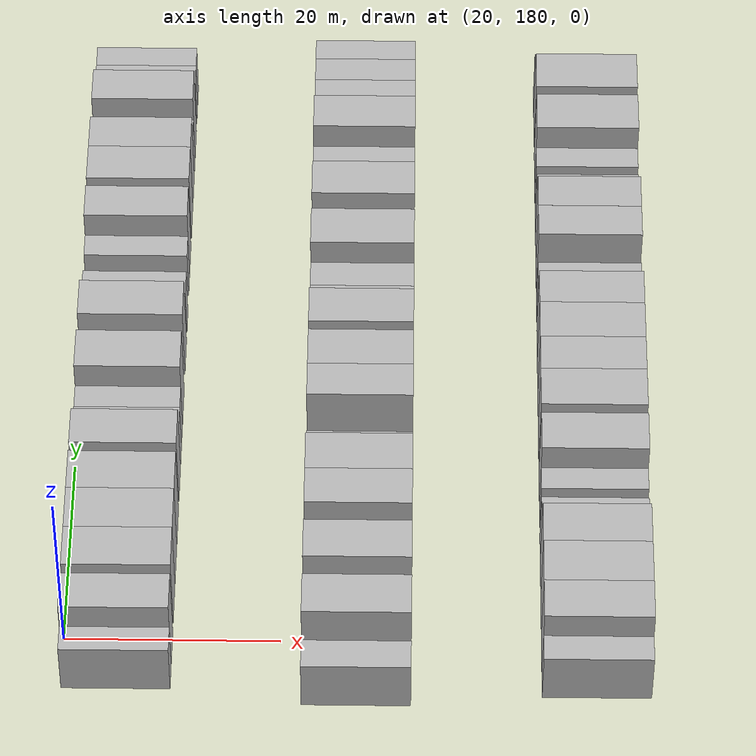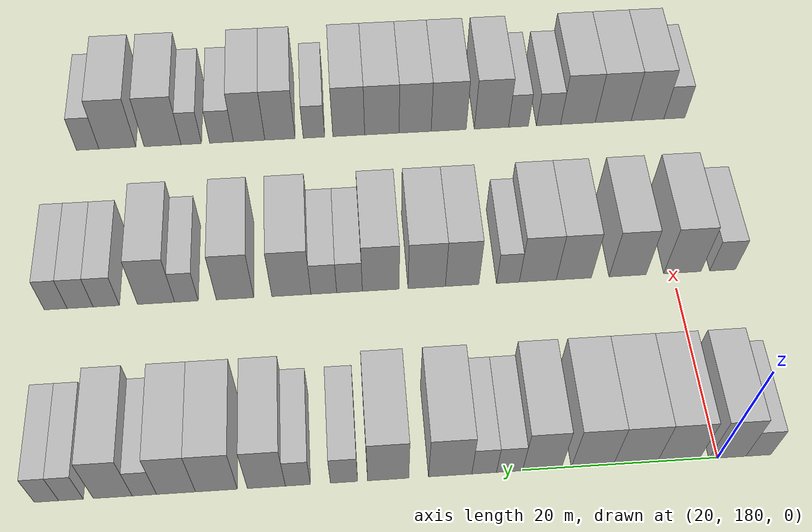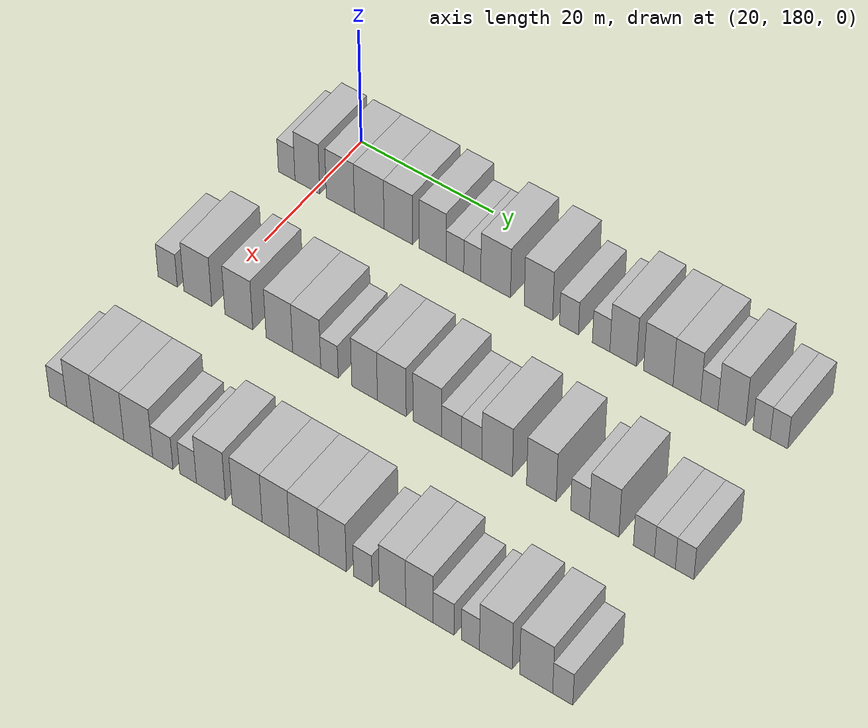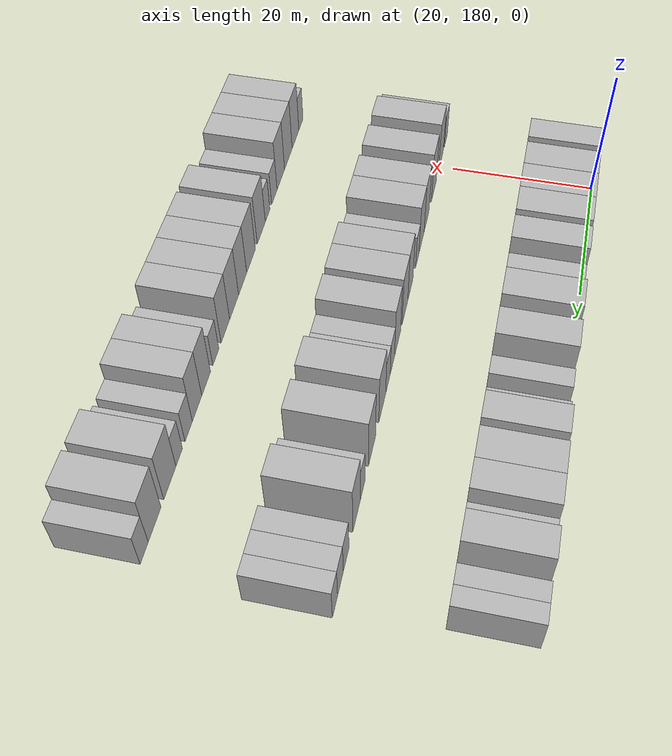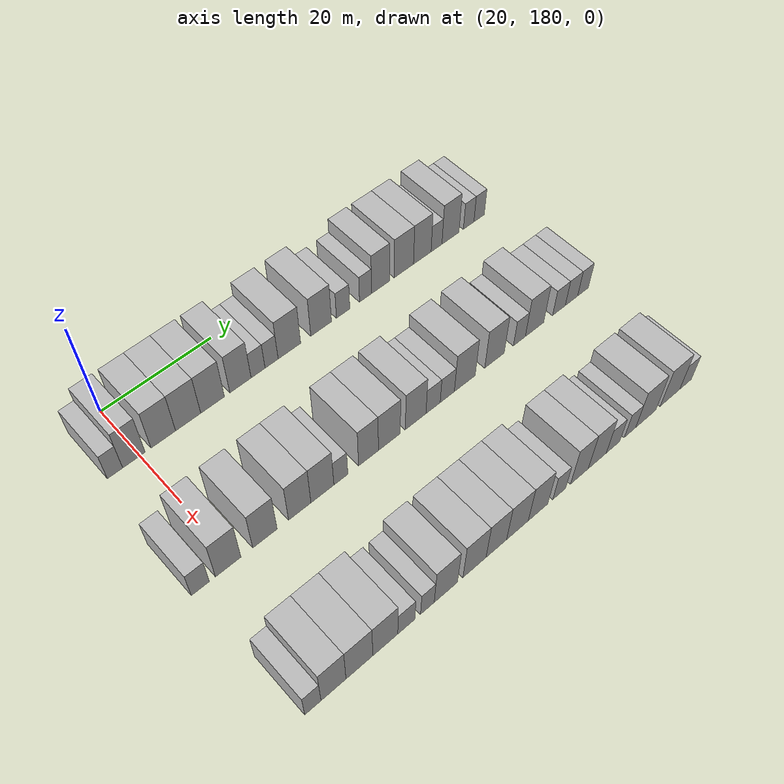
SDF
<sdf version="1.6">
 <world name="default">
  <model name="building_112">
   <static>1</static>
   <pose>25.0000 175.7853 0 0.000000 0.000000 0.000000</pose>
   <link name="link">
    <pose>0 0 3.00 0 0 0</pose>
    <collision name="collision"><geometry><box><size>10.0000 2.5840 6.0000</size></box></geometry></collision>
    <visual name="visual">
     <cast_shadows>0</cast_shadows>
     <geometry><box><size>10.0000 2.5840 6.0000</size></box></geometry>
     <material>
      <script>
       <uri>model://HANNAS_wall/materials/scripts</uri>
       <uri>model://HANNAS_wall/materials/textures</uri>
       <name>vrc/HANNAS_wall</name>
      </script>
     </material>
    </visual>
   </link>
  </model>
  <model name="building_113">
   <static>1</static>
   <pose>25.0000 178.9944 0 0.000000 0.000000 0.000000</pose>
   <link name="link">
    <pose>0 0 4.50 0 0 0</pose>
    <collision name="collision"><geometry><box><size>10.0000 3.8342 9.0000</size></box></geometry></collision>
    <visual name="visual">
     <cast_shadows>0</cast_shadows>
     <geometry><box><size>10.0000 3.8342 9.0000</size></box></geometry>
     <material>
      <script>
       <uri>model://HANNAS_wall/materials/scripts</uri>
       <uri>model://HANNAS_wall/materials/textures</uri>
       <name>vrc/HANNAS_wall</name>
      </script>
     </material>
    </visual>
   </link>
  </model>
  <model name="building_114">
   <static>1</static>
   <pose>25.0000 184.0667 0 0.000000 0.000000 0.000000</pose>
   <link name="link">
    <pose>0 0 4.50 0 0 0</pose>
    <collision name="collision"><geometry><box><size>10.0000 4.3104 9.0000</size></box></geometry></collision>
    <visual name="visual">
     <cast_shadows>0</cast_shadows>
     <geometry><box><size>10.0000 4.3104 9.0000</size></box></geometry>
     <material>
      <script>
       <uri>model://HANNAS_wall/materials/scripts</uri>
       <uri>model://HANNAS_wall/materials/textures</uri>
       <name>vrc/HANNAS_wall</name>
      </script>
     </material>
    </visual>
   </link>
  </model>
  <model name="building_115">
   <static>1</static>
   <pose>25.0000 188.4708 0 0.000000 0.000000 0.000000</pose>
   <link name="link">
    <pose>0 0 4.50 0 0 0</pose>
    <collision name="collision"><geometry><box><size>10.0000 4.4977 9.0000</size></box></geometry></collision>
    <visual name="visual">
     <cast_shadows>0</cast_shadows>
     <geometry><box><size>10.0000 4.4977 9.0000</size></box></geometry>
     <material>
      <script>
       <uri>model://HANNAS_wall/materials/scripts</uri>
       <uri>model://HANNAS_wall/materials/textures</uri>
       <name>vrc/HANNAS_wall</name>
      </script>
     </material>
    </visual>
   </link>
  </model>
  <model name="building_116">
   <static>1</static>
   <pose>25.0000 192.8739 0 0.000000 0.000000 0.000000</pose>
   <link name="link">
    <pose>0 0 4.50 0 0 0</pose>
    <collision name="collision"><geometry><box><size>10.0000 4.3086 9.0000</size></box></geometry></collision>
    <visual name="visual">
     <cast_shadows>0</cast_shadows>
     <geometry><box><size>10.0000 4.3086 9.0000</size></box></geometry>
     <material>
      <script>
       <uri>model://HANNAS_wall/materials/scripts</uri>
       <uri>model://HANNAS_wall/materials/textures</uri>
       <name>vrc/HANNAS_wall</name>
      </script>
     </material>
    </visual>
   </link>
  </model>
  <model name="building_117">
   <static>1</static>
   <pose>25.0000 198.0182 0 0.000000 0.000000 0.000000</pose>
   <link name="link">
    <pose>0 0 4.50 0 0 0</pose>
    <collision name="collision"><geometry><box><size>10.0000 3.9799 9.0000</size></box></geometry></collision>
    <visual name="visual">
     <cast_shadows>0</cast_shadows>
     <geometry><box><size>10.0000 3.9799 9.0000</size></box></geometry>
     <material>
      <script>
       <uri>model://HANNAS_wall/materials/scripts</uri>
       <uri>model://HANNAS_wall/materials/textures</uri>
       <name>vrc/HANNAS_wall</name>
      </script>
     </material>
    </visual>
   </link>
  </model>
  <model name="building_118">
   <static>1</static>
   <pose>25.0000 201.3306 0 0.000000 0.000000 0.000000</pose>
   <link name="link">
    <pose>0 0 3.00 0 0 0</pose>
    <collision name="collision"><geometry><box><size>10.0000 2.6448 6.0000</size></box></geometry></collision>
    <visual name="visual">
     <cast_shadows>0</cast_shadows>
     <geometry><box><size>10.0000 2.6448 6.0000</size></box></geometry>
     <material>
      <script>
       <uri>model://HANNAS_wall/materials/scripts</uri>
       <uri>model://HANNAS_wall/materials/textures</uri>
       <name>vrc/HANNAS_wall</name>
      </script>
     </material>
    </visual>
   </link>
  </model>
  <model name="building_119">
   <static>1</static>
   <pose>25.0000 203.9070 0 0.000000 0.000000 0.000000</pose>
   <link name="link">
    <pose>0 0 3.00 0 0 0</pose>
    <collision name="collision"><geometry><box><size>10.0000 2.5080 6.0000</size></box></geometry></collision>
    <visual name="visual">
     <cast_shadows>0</cast_shadows>
     <geometry><box><size>10.0000 2.5080 6.0000</size></box></geometry>
     <material>
      <script>
       <uri>model://HANNAS_wall/materials/scripts</uri>
       <uri>model://HANNAS_wall/materials/textures</uri>
       <name>vrc/HANNAS_wall</name>
      </script>
     </material>
    </visual>
   </link>
  </model>
  <model name="building_120">
   <static>1</static>
   <pose>25.0000 207.3560 0 0.000000 0.000000 0.000000</pose>
   <link name="link">
    <pose>0 0 4.50 0 0 0</pose>
    <collision name="collision"><geometry><box><size>10.0000 4.3900 9.0000</size></box></geometry></collision>
    <visual name="visual">
     <cast_shadows>0</cast_shadows>
     <geometry><box><size>10.0000 4.3900 9.0000</size></box></geometry>
     <material>
      <script>
       <uri>model://HANNAS_wall/materials/scripts</uri>
       <uri>model://HANNAS_wall/materials/textures</uri>
       <name>vrc/HANNAS_wall</name>
      </script>
     </material>
    </visual>
   </link>
  </model>
  <model name="building_121">
   <static>1</static>
   <pose>25.0000 213.6274 0 0.000000 0.000000 0.000000</pose>
   <link name="link">
    <pose>0 0 4.50 0 0 0</pose>
    <collision name="collision"><geometry><box><size>10.0000 4.1528 9.0000</size></box></geometry></collision>
    <visual name="visual">
     <cast_shadows>0</cast_shadows>
     <geometry><box><size>10.0000 4.1528 9.0000</size></box></geometry>
     <material>
      <script>
       <uri>model://HANNAS_wall/materials/scripts</uri>
       <uri>model://HANNAS_wall/materials/textures</uri>
       <name>vrc/HANNAS_wall</name>
      </script>
     </material>
    </visual>
   </link>
  </model>
  <model name="building_122">
   <static>1</static>
   <pose>25.0000 218.0748 0 0.000000 0.000000 0.000000</pose>
   <link name="link">
    <pose>0 0 3.00 0 0 0</pose>
    <collision name="collision"><geometry><box><size>10.0000 2.7422 6.0000</size></box></geometry></collision>
    <visual name="visual">
     <cast_shadows>0</cast_shadows>
     <geometry><box><size>10.0000 2.7422 6.0000</size></box></geometry>
     <material>
      <script>
       <uri>model://HANNAS_wall/materials/scripts</uri>
       <uri>model://HANNAS_wall/materials/textures</uri>
       <name>vrc/HANNAS_wall</name>
      </script>
     </material>
    </visual>
   </link>
  </model>
  <model name="building_123">
   <static>1</static>
   <pose>25.0000 222.7039 0 0.000000 0.000000 0.000000</pose>
   <link name="link">
    <pose>0 0 3.00 0 0 0</pose>
    <collision name="collision"><geometry><box><size>10.0000 2.5161 6.0000</size></box></geometry></collision>
    <visual name="visual">
     <cast_shadows>0</cast_shadows>
     <geometry><box><size>10.0000 2.5161 6.0000</size></box></geometry>
     <material>
      <script>
       <uri>model://HANNAS_wall/materials/scripts</uri>
       <uri>model://HANNAS_wall/materials/textures</uri>
       <name>vrc/HANNAS_wall</name>
      </script>
     </material>
    </visual>
   </link>
  </model>
  <model name="building_124">
   <static>1</static>
   <pose>25.0000 225.8639 0 0.000000 0.000000 0.000000</pose>
   <link name="link">
    <pose>0 0 4.50 0 0 0</pose>
    <collision name="collision"><geometry><box><size>10.0000 3.8038 9.0000</size></box></geometry></collision>
    <visual name="visual">
     <cast_shadows>0</cast_shadows>
     <geometry><box><size>10.0000 3.8038 9.0000</size></box></geometry>
     <material>
      <script>
       <uri>model://HANNAS_wall/materials/scripts</uri>
       <uri>model://HANNAS_wall/materials/textures</uri>
       <name>vrc/HANNAS_wall</name>
      </script>
     </material>
    </visual>
   </link>
  </model>
  <model name="building_125">
   <static>1</static>
   <pose>25.0000 230.8560 0 0.000000 0.000000 0.000000</pose>
   <link name="link">
    <pose>0 0 4.50 0 0 0</pose>
    <collision name="collision"><geometry><box><size>10.0000 4.1805 9.0000</size></box></geometry></collision>
    <visual name="visual">
     <cast_shadows>0</cast_shadows>
     <geometry><box><size>10.0000 4.1805 9.0000</size></box></geometry>
     <material>
      <script>
       <uri>model://HANNAS_wall/materials/scripts</uri>
       <uri>model://HANNAS_wall/materials/textures</uri>
       <name>vrc/HANNAS_wall</name>
      </script>
     </material>
    </visual>
   </link>
  </model>
  <model name="building_126">
   <static>1</static>
   <pose>25.0000 234.8821 0 0.000000 0.000000 0.000000</pose>
   <link name="link">
    <pose>0 0 4.50 0 0 0</pose>
    <collision name="collision"><geometry><box><size>10.0000 3.8718 9.0000</size></box></geometry></collision>
    <visual name="visual">
     <cast_shadows>0</cast_shadows>
     <geometry><box><size>10.0000 3.8718 9.0000</size></box></geometry>
     <material>
      <script>
       <uri>model://HANNAS_wall/materials/scripts</uri>
       <uri>model://HANNAS_wall/materials/textures</uri>
       <name>vrc/HANNAS_wall</name>
      </script>
     </material>
    </visual>
   </link>
  </model>
  <model name="building_127">
   <static>1</static>
   <pose>25.0000 238.0304 0 0.000000 0.000000 0.000000</pose>
   <link name="link">
    <pose>0 0 3.00 0 0 0</pose>
    <collision name="collision"><geometry><box><size>10.0000 2.4249 6.0000</size></box></geometry></collision>
    <visual name="visual">
     <cast_shadows>0</cast_shadows>
     <geometry><box><size>10.0000 2.4249 6.0000</size></box></geometry>
     <material>
      <script>
       <uri>model://HANNAS_wall/materials/scripts</uri>
       <uri>model://HANNAS_wall/materials/textures</uri>
       <name>vrc/HANNAS_wall</name>
      </script>
     </material>
    </visual>
   </link>
  </model>
  <model name="building_128">
   <static>1</static>
   <pose>25.0000 241.1689 0 0.000000 0.000000 0.000000</pose>
   <link name="link">
    <pose>0 0 4.50 0 0 0</pose>
    <collision name="collision"><geometry><box><size>10.0000 3.8520 9.0000</size></box></geometry></collision>
    <visual name="visual">
     <cast_shadows>0</cast_shadows>
     <geometry><box><size>10.0000 3.8520 9.0000</size></box></geometry>
     <material>
      <script>
       <uri>model://HANNAS_wall/materials/scripts</uri>
       <uri>model://HANNAS_wall/materials/textures</uri>
       <name>vrc/HANNAS_wall</name>
      </script>
     </material>
    </visual>
   </link>
  </model>
  <model name="building_129">
   <static>1</static>
   <pose>25.0000 245.3079 0 0.000000 0.000000 0.000000</pose>
   <link name="link">
    <pose>0 0 3.00 0 0 0</pose>
    <collision name="collision"><geometry><box><size>10.0000 2.4261 6.0000</size></box></geometry></collision>
    <visual name="visual">
     <cast_shadows>0</cast_shadows>
     <geometry><box><size>10.0000 2.4261 6.0000</size></box></geometry>
     <material>
      <script>
       <uri>model://HANNAS_wall/materials/scripts</uri>
       <uri>model://HANNAS_wall/materials/textures</uri>
       <name>vrc/HANNAS_wall</name>
      </script>
     </material>
    </visual>
   </link>
  </model>
  <model name="building_130">
   <static>1</static>
   <pose>25.0000 247.7248 0 0.000000 0.000000 0.000000</pose>
   <link name="link">
    <pose>0 0 3.00 0 0 0</pose>
    <collision name="collision"><geometry><box><size>10.0000 2.4077 6.0000</size></box></geometry></collision>
    <visual name="visual">
     <cast_shadows>0</cast_shadows>
     <geometry><box><size>10.0000 2.4077 6.0000</size></box></geometry>
     <material>
      <script>
       <uri>model://HANNAS_wall/materials/scripts</uri>
       <uri>model://HANNAS_wall/materials/textures</uri>
       <name>vrc/HANNAS_wall</name>
      </script>
     </material>
    </visual>
   </link>
  </model>
  <model name="building_231">
   <static>1</static>
   <pose>47.0000 174.3598 0 0.000000 0.000000 0.000000</pose>
   <link name="link">
    <pose>0 0 3.00 0 0 0</pose>
    <collision name="collision"><geometry><box><size>10.0000 2.9588 6.0000</size></box></geometry></collision>
    <visual name="visual">
     <cast_shadows>0</cast_shadows>
     <geometry><box><size>10.0000 2.9588 6.0000</size></box></geometry>
     <material>
      <script>
       <uri>model://HANNAS_wall/materials/scripts</uri>
       <uri>model://HANNAS_wall/materials/textures</uri>
       <name>vrc/HANNAS_wall</name>
      </script>
     </material>
    </visual>
   </link>
  </model>
  <model name="building_232">
   <static>1</static>
   <pose>47.0000 178.9680 0 0.000000 0.000000 0.000000</pose>
   <link name="link">
    <pose>0 0 4.50 0 0 0</pose>
    <collision name="collision"><geometry><box><size>10.0000 4.2577 9.0000</size></box></geometry></collision>
    <visual name="visual">
     <cast_shadows>0</cast_shadows>
     <geometry><box><size>10.0000 4.2577 9.0000</size></box></geometry>
     <material>
      <script>
       <uri>model://HANNAS_wall/materials/scripts</uri>
       <uri>model://HANNAS_wall/materials/textures</uri>
       <name>vrc/HANNAS_wall</name>
      </script>
     </material>
    </visual>
   </link>
  </model>
  <model name="building_233">
   <static>1</static>
   <pose>47.0000 185.2000 0 0.000000 0.000000 0.000000</pose>
   <link name="link">
    <pose>0 0 4.50 0 0 0</pose>
    <collision name="collision"><geometry><box><size>10.0000 4.2062 9.0000</size></box></geometry></collision>
    <visual name="visual">
     <cast_shadows>0</cast_shadows>
     <geometry><box><size>10.0000 4.2062 9.0000</size></box></geometry>
     <material>
      <script>
       <uri>model://HANNAS_wall/materials/scripts</uri>
       <uri>model://HANNAS_wall/materials/textures</uri>
       <name>vrc/HANNAS_wall</name>
      </script>
     </material>
    </visual>
   </link>
  </model>
  <model name="building_234">
   <static>1</static>
   <pose>47.0000 191.2917 0 0.000000 0.000000 0.000000</pose>
   <link name="link">
    <pose>0 0 4.50 0 0 0</pose>
    <collision name="collision"><geometry><box><size>10.0000 3.9772 9.0000</size></box></geometry></collision>
    <visual name="visual">
     <cast_shadows>0</cast_shadows>
     <geometry><box><size>10.0000 3.9772 9.0000</size></box></geometry>
     <material>
      <script>
       <uri>model://HANNAS_wall/materials/scripts</uri>
       <uri>model://HANNAS_wall/materials/textures</uri>
       <name>vrc/HANNAS_wall</name>
      </script>
     </material>
    </visual>
   </link>
  </model>
  <model name="building_235">
   <static>1</static>
   <pose>47.0000 195.3670 0 0.000000 0.000000 0.000000</pose>
   <link name="link">
    <pose>0 0 4.50 0 0 0</pose>
    <collision name="collision"><geometry><box><size>10.0000 4.1733 9.0000</size></box></geometry></collision>
    <visual name="visual">
     <cast_shadows>0</cast_shadows>
     <geometry><box><size>10.0000 4.1733 9.0000</size></box></geometry>
     <material>
      <script>
       <uri>model://HANNAS_wall/materials/scripts</uri>
       <uri>model://HANNAS_wall/materials/textures</uri>
       <name>vrc/HANNAS_wall</name>
      </script>
     </material>
    </visual>
   </link>
  </model>
  <model name="building_236">
   <static>1</static>
   <pose>47.0000 198.7367 0 0.000000 0.000000 0.000000</pose>
   <link name="link">
    <pose>0 0 3.00 0 0 0</pose>
    <collision name="collision"><geometry><box><size>10.0000 2.5662 6.0000</size></box></geometry></collision>
    <visual name="visual">
     <cast_shadows>0</cast_shadows>
     <geometry><box><size>10.0000 2.5662 6.0000</size></box></geometry>
     <material>
      <script>
       <uri>model://HANNAS_wall/materials/scripts</uri>
       <uri>model://HANNAS_wall/materials/textures</uri>
       <name>vrc/HANNAS_wall</name>
      </script>
     </material>
    </visual>
   </link>
  </model>
  <model name="building_237">
   <static>1</static>
   <pose>47.0000 203.8950 0 0.000000 0.000000 0.000000</pose>
   <link name="link">
    <pose>0 0 4.50 0 0 0</pose>
    <collision name="collision"><geometry><box><size>10.0000 3.7502 9.0000</size></box></geometry></collision>
    <visual name="visual">
     <cast_shadows>0</cast_shadows>
     <geometry><box><size>10.0000 3.7502 9.0000</size></box></geometry>
     <material>
      <script>
       <uri>model://HANNAS_wall/materials/scripts</uri>
       <uri>model://HANNAS_wall/materials/textures</uri>
       <name>vrc/HANNAS_wall</name>
      </script>
     </material>
    </visual>
   </link>
  </model>
  <model name="building_238">
   <static>1</static>
   <pose>47.0000 207.8610 0 0.000000 0.000000 0.000000</pose>
   <link name="link">
    <pose>0 0 4.50 0 0 0</pose>
    <collision name="collision"><geometry><box><size>10.0000 4.1819 9.0000</size></box></geometry></collision>
    <visual name="visual">
     <cast_shadows>0</cast_shadows>
     <geometry><box><size>10.0000 4.1819 9.0000</size></box></geometry>
     <material>
      <script>
       <uri>model://HANNAS_wall/materials/scripts</uri>
       <uri>model://HANNAS_wall/materials/textures</uri>
       <name>vrc/HANNAS_wall</name>
      </script>
     </material>
    </visual>
   </link>
  </model>
  <model name="building_239">
   <static>1</static>
   <pose>47.0000 213.0036 0 0.000000 0.000000 0.000000</pose>
   <link name="link">
    <pose>0 0 4.50 0 0 0</pose>
    <collision name="collision"><geometry><box><size>10.0000 4.1032 9.0000</size></box></geometry></collision>
    <visual name="visual">
     <cast_shadows>0</cast_shadows>
     <geometry><box><size>10.0000 4.1032 9.0000</size></box></geometry>
     <material>
      <script>
       <uri>model://HANNAS_wall/materials/scripts</uri>
       <uri>model://HANNAS_wall/materials/textures</uri>
       <name>vrc/HANNAS_wall</name>
      </script>
     </material>
    </visual>
   </link>
  </model>
  <model name="building_240">
   <static>1</static>
   <pose>47.0000 216.4853 0 0.000000 0.000000 0.000000</pose>
   <link name="link">
    <pose>0 0 3.00 0 0 0</pose>
    <collision name="collision"><geometry><box><size>10.0000 2.8602 6.0000</size></box></geometry></collision>
    <visual name="visual">
     <cast_shadows>0</cast_shadows>
     <geometry><box><size>10.0000 2.8602 6.0000</size></box></geometry>
     <material>
      <script>
       <uri>model://HANNAS_wall/materials/scripts</uri>
       <uri>model://HANNAS_wall/materials/textures</uri>
       <name>vrc/HANNAS_wall</name>
      </script>
     </material>
    </visual>
   </link>
  </model>
  <model name="building_241">
   <static>1</static>
   <pose>47.0000 219.3539 0 0.000000 0.000000 0.000000</pose>
   <link name="link">
    <pose>0 0 3.00 0 0 0</pose>
    <collision name="collision"><geometry><box><size>10.0000 2.8768 6.0000</size></box></geometry></collision>
    <visual name="visual">
     <cast_shadows>0</cast_shadows>
     <geometry><box><size>10.0000 2.8768 6.0000</size></box></geometry>
     <material>
      <script>
       <uri>model://HANNAS_wall/materials/scripts</uri>
       <uri>model://HANNAS_wall/materials/textures</uri>
       <name>vrc/HANNAS_wall</name>
      </script>
     </material>
    </visual>
   </link>
  </model>
  <model name="building_242">
   <static>1</static>
   <pose>47.0000 222.9565 0 0.000000 0.000000 0.000000</pose>
   <link name="link">
    <pose>0 0 4.50 0 0 0</pose>
    <collision name="collision"><geometry><box><size>10.0000 4.3284 9.0000</size></box></geometry></collision>
    <visual name="visual">
     <cast_shadows>0</cast_shadows>
     <geometry><box><size>10.0000 4.3284 9.0000</size></box></geometry>
     <material>
      <script>
       <uri>model://HANNAS_wall/materials/scripts</uri>
       <uri>model://HANNAS_wall/materials/textures</uri>
       <name>vrc/HANNAS_wall</name>
      </script>
     </material>
    </visual>
   </link>
  </model>
  <model name="building_243">
   <static>1</static>
   <pose>47.0000 229.1967 0 0.000000 0.000000 0.000000</pose>
   <link name="link">
    <pose>0 0 4.50 0 0 0</pose>
    <collision name="collision"><geometry><box><size>10.0000 4.1522 9.0000</size></box></geometry></collision>
    <visual name="visual">
     <cast_shadows>0</cast_shadows>
     <geometry><box><size>10.0000 4.1522 9.0000</size></box></geometry>
     <material>
      <script>
       <uri>model://HANNAS_wall/materials/scripts</uri>
       <uri>model://HANNAS_wall/materials/textures</uri>
       <name>vrc/HANNAS_wall</name>
      </script>
     </material>
    </visual>
   </link>
  </model>
  <model name="building_244">
   <static>1</static>
   <pose>47.0000 234.5743 0 0.000000 0.000000 0.000000</pose>
   <link name="link">
    <pose>0 0 3.00 0 0 0</pose>
    <collision name="collision"><geometry><box><size>10.0000 2.6030 6.0000</size></box></geometry></collision>
    <visual name="visual">
     <cast_shadows>0</cast_shadows>
     <geometry><box><size>10.0000 2.6030 6.0000</size></box></geometry>
     <material>
      <script>
       <uri>model://HANNAS_wall/materials/scripts</uri>
       <uri>model://HANNAS_wall/materials/textures</uri>
       <name>vrc/HANNAS_wall</name>
      </script>
     </material>
    </visual>
   </link>
  </model>
  <model name="building_245">
   <static>1</static>
   <pose>47.0000 237.9130 0 0.000000 0.000000 0.000000</pose>
   <link name="link">
    <pose>0 0 4.50 0 0 0</pose>
    <collision name="collision"><geometry><box><size>10.0000 4.0745 9.0000</size></box></geometry></collision>
    <visual name="visual">
     <cast_shadows>0</cast_shadows>
     <geometry><box><size>10.0000 4.0745 9.0000</size></box></geometry>
     <material>
      <script>
       <uri>model://HANNAS_wall/materials/scripts</uri>
       <uri>model://HANNAS_wall/materials/textures</uri>
       <name>vrc/HANNAS_wall</name>
      </script>
     </material>
    </visual>
   </link>
  </model>
  <model name="building_246">
   <static>1</static>
   <pose>47.0000 243.3899 0 0.000000 0.000000 0.000000</pose>
   <link name="link">
    <pose>0 0 3.00 0 0 0</pose>
    <collision name="collision"><geometry><box><size>10.0000 2.8792 6.0000</size></box></geometry></collision>
    <visual name="visual">
     <cast_shadows>0</cast_shadows>
     <geometry><box><size>10.0000 2.8792 6.0000</size></box></geometry>
     <material>
      <script>
       <uri>model://HANNAS_wall/materials/scripts</uri>
       <uri>model://HANNAS_wall/materials/textures</uri>
       <name>vrc/HANNAS_wall</name>
      </script>
     </material>
    </visual>
   </link>
  </model>
  <model name="building_247">
   <static>1</static>
   <pose>47.0000 246.2513 0 0.000000 0.000000 0.000000</pose>
   <link name="link">
    <pose>0 0 3.00 0 0 0</pose>
    <collision name="collision"><geometry><box><size>10.0000 2.8436 6.0000</size></box></geometry></collision>
    <visual name="visual">
     <cast_shadows>0</cast_shadows>
     <geometry><box><size>10.0000 2.8436 6.0000</size></box></geometry>
     <material>
      <script>
       <uri>model://HANNAS_wall/materials/scripts</uri>
       <uri>model://HANNAS_wall/materials/textures</uri>
       <name>vrc/HANNAS_wall</name>
      </script>
     </material>
    </visual>
   </link>
  </model>
  <model name="building_248">
   <static>1</static>
   <pose>47.0000 248.9256 0 0.000000 0.000000 0.000000</pose>
   <link name="link">
    <pose>0 0 3.00 0 0 0</pose>
    <collision name="collision"><geometry><box><size>10.0000 2.5050 6.0000</size></box></geometry></collision>
    <visual name="visual">
     <cast_shadows>0</cast_shadows>
     <geometry><box><size>10.0000 2.5050 6.0000</size></box></geometry>
     <material>
      <script>
       <uri>model://HANNAS_wall/materials/scripts</uri>
       <uri>model://HANNAS_wall/materials/textures</uri>
       <name>vrc/HANNAS_wall</name>
      </script>
     </material>
    </visual>
   </link>
  </model>
  <model name="building_355">
   <static>1</static>
   <pose>69.0000 175.2912 0 0.000000 0.000000 0.000000</pose>
   <link name="link">
    <pose>0 0 3.00 0 0 0</pose>
    <collision name="collision"><geometry><box><size>10.0000 2.6192 6.0000</size></box></geometry></collision>
    <visual name="visual">
     <cast_shadows>0</cast_shadows>
     <geometry><box><size>10.0000 2.6192 6.0000</size></box></geometry>
     <material>
      <script>
       <uri>model://HANNAS_wall/materials/scripts</uri>
       <uri>model://HANNAS_wall/materials/textures</uri>
       <name>vrc/HANNAS_wall</name>
      </script>
     </material>
    </visual>
   </link>
  </model>
  <model name="building_356">
   <static>1</static>
   <pose>69.0000 178.6456 0 0.000000 0.000000 0.000000</pose>
   <link name="link">
    <pose>0 0 4.50 0 0 0</pose>
    <collision name="collision"><geometry><box><size>10.0000 4.0895 9.0000</size></box></geometry></collision>
    <visual name="visual">
     <cast_shadows>0</cast_shadows>
     <geometry><box><size>10.0000 4.0895 9.0000</size></box></geometry>
     <material>
      <script>
       <uri>model://HANNAS_wall/materials/scripts</uri>
       <uri>model://HANNAS_wall/materials/textures</uri>
       <name>vrc/HANNAS_wall</name>
      </script>
     </material>
    </visual>
   </link>
  </model>
  <model name="building_357">
   <static>1</static>
   <pose>69.0000 182.9298 0 0.000000 0.000000 0.000000</pose>
   <link name="link">
    <pose>0 0 4.50 0 0 0</pose>
    <collision name="collision"><geometry><box><size>10.0000 4.4788 9.0000</size></box></geometry></collision>
    <visual name="visual">
     <cast_shadows>0</cast_shadows>
     <geometry><box><size>10.0000 4.4788 9.0000</size></box></geometry>
     <material>
      <script>
       <uri>model://HANNAS_wall/materials/scripts</uri>
       <uri>model://HANNAS_wall/materials/textures</uri>
       <name>vrc/HANNAS_wall</name>
      </script>
     </material>
    </visual>
   </link>
  </model>
  <model name="building_358">
   <static>1</static>
   <pose>69.0000 187.3162 0 0.000000 0.000000 0.000000</pose>
   <link name="link">
    <pose>0 0 4.50 0 0 0</pose>
    <collision name="collision"><geometry><box><size>10.0000 4.2941 9.0000</size></box></geometry></collision>
    <visual name="visual">
     <cast_shadows>0</cast_shadows>
     <geometry><box><size>10.0000 4.2941 9.0000</size></box></geometry>
     <material>
      <script>
       <uri>model://HANNAS_wall/materials/scripts</uri>
       <uri>model://HANNAS_wall/materials/textures</uri>
       <name>vrc/HANNAS_wall</name>
      </script>
     </material>
    </visual>
   </link>
  </model>
  <model name="building_359">
   <static>1</static>
   <pose>69.0000 190.9588 0 0.000000 0.000000 0.000000</pose>
   <link name="link">
    <pose>0 0 3.00 0 0 0</pose>
    <collision name="collision"><geometry><box><size>10.0000 2.9911 6.0000</size></box></geometry></collision>
    <visual name="visual">
     <cast_shadows>0</cast_shadows>
     <geometry><box><size>10.0000 2.9911 6.0000</size></box></geometry>
     <material>
      <script>
       <uri>model://HANNAS_wall/materials/scripts</uri>
       <uri>model://HANNAS_wall/materials/textures</uri>
       <name>vrc/HANNAS_wall</name>
      </script>
     </material>
    </visual>
   </link>
  </model>
  <model name="building_360">
   <static>1</static>
   <pose>69.0000 194.6796 0 0.000000 0.000000 0.000000</pose>
   <link name="link">
    <pose>0 0 3.00 0 0 0</pose>
    <collision name="collision"><geometry><box><size>10.0000 2.4505 6.0000</size></box></geometry></collision>
    <visual name="visual">
     <cast_shadows>0</cast_shadows>
     <geometry><box><size>10.0000 2.4505 6.0000</size></box></geometry>
     <material>
      <script>
       <uri>model://HANNAS_wall/materials/scripts</uri>
       <uri>model://HANNAS_wall/materials/textures</uri>
       <name>vrc/HANNAS_wall</name>
      </script>
     </material>
    </visual>
   </link>
  </model>
  <model name="building_361">
   <static>1</static>
   <pose>69.0000 198.0179 0 0.000000 0.000000 0.000000</pose>
   <link name="link">
    <pose>0 0 4.50 0 0 0</pose>
    <collision name="collision"><geometry><box><size>10.0000 4.2261 9.0000</size></box></geometry></collision>
    <visual name="visual">
     <cast_shadows>0</cast_shadows>
     <geometry><box><size>10.0000 4.2261 9.0000</size></box></geometry>
     <material>
      <script>
       <uri>model://HANNAS_wall/materials/scripts</uri>
       <uri>model://HANNAS_wall/materials/textures</uri>
       <name>vrc/HANNAS_wall</name>
      </script>
     </material>
    </visual>
   </link>
  </model>
  <model name="building_362">
   <static>1</static>
   <pose>69.0000 203.2903 0 0.000000 0.000000 0.000000</pose>
   <link name="link">
    <pose>0 0 4.50 0 0 0</pose>
    <collision name="collision"><geometry><box><size>10.0000 4.3186 9.0000</size></box></geometry></collision>
    <visual name="visual">
     <cast_shadows>0</cast_shadows>
     <geometry><box><size>10.0000 4.3186 9.0000</size></box></geometry>
     <material>
      <script>
       <uri>model://HANNAS_wall/materials/scripts</uri>
       <uri>model://HANNAS_wall/materials/textures</uri>
       <name>vrc/HANNAS_wall</name>
      </script>
     </material>
    </visual>
   </link>
  </model>
  <model name="building_363">
   <static>1</static>
   <pose>69.0000 207.4118 0 0.000000 0.000000 0.000000</pose>
   <link name="link">
    <pose>0 0 4.50 0 0 0</pose>
    <collision name="collision"><geometry><box><size>10.0000 3.9243 9.0000</size></box></geometry></collision>
    <visual name="visual">
     <cast_shadows>0</cast_shadows>
     <geometry><box><size>10.0000 3.9243 9.0000</size></box></geometry>
     <material>
      <script>
       <uri>model://HANNAS_wall/materials/scripts</uri>
       <uri>model://HANNAS_wall/materials/textures</uri>
       <name>vrc/HANNAS_wall</name>
      </script>
     </material>
    </visual>
   </link>
  </model>
  <model name="building_364">
   <static>1</static>
   <pose>69.0000 211.4880 0 0.000000 0.000000 0.000000</pose>
   <link name="link">
    <pose>0 0 4.50 0 0 0</pose>
    <collision name="collision"><geometry><box><size>10.0000 4.2280 9.0000</size></box></geometry></collision>
    <visual name="visual">
     <cast_shadows>0</cast_shadows>
     <geometry><box><size>10.0000 4.2280 9.0000</size></box></geometry>
     <material>
      <script>
       <uri>model://HANNAS_wall/materials/scripts</uri>
       <uri>model://HANNAS_wall/materials/textures</uri>
       <name>vrc/HANNAS_wall</name>
      </script>
     </material>
    </visual>
   </link>
  </model>
  <model name="building_365">
   <static>1</static>
   <pose>69.0000 215.5435 0 0.000000 0.000000 0.000000</pose>
   <link name="link">
    <pose>0 0 4.50 0 0 0</pose>
    <collision name="collision"><geometry><box><size>10.0000 3.8830 9.0000</size></box></geometry></collision>
    <visual name="visual">
     <cast_shadows>0</cast_shadows>
     <geometry><box><size>10.0000 3.8830 9.0000</size></box></geometry>
     <material>
      <script>
       <uri>model://HANNAS_wall/materials/scripts</uri>
       <uri>model://HANNAS_wall/materials/textures</uri>
       <name>vrc/HANNAS_wall</name>
      </script>
     </material>
    </visual>
   </link>
  </model>
  <model name="building_366">
   <static>1</static>
   <pose>69.0000 219.7917 0 0.000000 0.000000 0.000000</pose>
   <link name="link">
    <pose>0 0 3.00 0 0 0</pose>
    <collision name="collision"><geometry><box><size>10.0000 2.6135 6.0000</size></box></geometry></collision>
    <visual name="visual">
     <cast_shadows>0</cast_shadows>
     <geometry><box><size>10.0000 2.6135 6.0000</size></box></geometry>
     <material>
      <script>
       <uri>model://HANNAS_wall/materials/scripts</uri>
       <uri>model://HANNAS_wall/materials/textures</uri>
       <name>vrc/HANNAS_wall</name>
      </script>
     </material>
    </visual>
   </link>
  </model>
  <model name="building_367">
   <static>1</static>
   <pose>69.0000 223.9390 0 0.000000 0.000000 0.000000</pose>
   <link name="link">
    <pose>0 0 4.50 0 0 0</pose>
    <collision name="collision"><geometry><box><size>10.0000 3.6812 9.0000</size></box></geometry></collision>
    <visual name="visual">
     <cast_shadows>0</cast_shadows>
     <geometry><box><size>10.0000 3.6812 9.0000</size></box></geometry>
     <material>
      <script>
       <uri>model://HANNAS_wall/materials/scripts</uri>
       <uri>model://HANNAS_wall/materials/textures</uri>
       <name>vrc/HANNAS_wall</name>
      </script>
     </material>
    </visual>
   </link>
  </model>
  <model name="building_368">
   <static>1</static>
   <pose>69.0000 227.6849 0 0.000000 0.000000 0.000000</pose>
   <link name="link">
    <pose>0 0 4.50 0 0 0</pose>
    <collision name="collision"><geometry><box><size>10.0000 3.8104 9.0000</size></box></geometry></collision>
    <visual name="visual">
     <cast_shadows>0</cast_shadows>
     <geometry><box><size>10.0000 3.8104 9.0000</size></box></geometry>
     <material>
      <script>
       <uri>model://HANNAS_wall/materials/scripts</uri>
       <uri>model://HANNAS_wall/materials/textures</uri>
       <name>vrc/HANNAS_wall</name>
      </script>
     </material>
    </visual>
   </link>
  </model>
  <model name="building_369">
   <static>1</static>
   <pose>69.0000 231.0300 0 0.000000 0.000000 0.000000</pose>
   <link name="link">
    <pose>0 0 3.00 0 0 0</pose>
    <collision name="collision"><geometry><box><size>10.0000 2.8798 6.0000</size></box></geometry></collision>
    <visual name="visual">
     <cast_shadows>0</cast_shadows>
     <geometry><box><size>10.0000 2.8798 6.0000</size></box></geometry>
     <material>
      <script>
       <uri>model://HANNAS_wall/materials/scripts</uri>
       <uri>model://HANNAS_wall/materials/textures</uri>
       <name>vrc/HANNAS_wall</name>
      </script>
     </material>
    </visual>
   </link>
  </model>
  <model name="building_370">
   <static>1</static>
   <pose>69.0000 234.7074 0 0.000000 0.000000 0.000000</pose>
   <link name="link">
    <pose>0 0 3.00 0 0 0</pose>
    <collision name="collision"><geometry><box><size>10.0000 2.4750 6.0000</size></box></geometry></collision>
    <visual name="visual">
     <cast_shadows>0</cast_shadows>
     <geometry><box><size>10.0000 2.4750 6.0000</size></box></geometry>
     <material>
      <script>
       <uri>model://HANNAS_wall/materials/scripts</uri>
       <uri>model://HANNAS_wall/materials/textures</uri>
       <name>vrc/HANNAS_wall</name>
      </script>
     </material>
    </visual>
   </link>
  </model>
  <model name="building_371">
   <static>1</static>
   <pose>69.0000 238.1710 0 0.000000 0.000000 0.000000</pose>
   <link name="link">
    <pose>0 0 4.50 0 0 0</pose>
    <collision name="collision"><geometry><box><size>10.0000 4.4523 9.0000</size></box></geometry></collision>
    <visual name="visual">
     <cast_shadows>0</cast_shadows>
     <geometry><box><size>10.0000 4.4523 9.0000</size></box></geometry>
     <material>
      <script>
       <uri>model://HANNAS_wall/materials/scripts</uri>
       <uri>model://HANNAS_wall/materials/textures</uri>
       <name>vrc/HANNAS_wall</name>
      </script>
     </material>
    </visual>
   </link>
  </model>
  <model name="building_372">
   <static>1</static>
   <pose>69.0000 243.6220 0 0.000000 0.000000 0.000000</pose>
   <link name="link">
    <pose>0 0 4.50 0 0 0</pose>
    <collision name="collision"><geometry><box><size>10.0000 4.4497 9.0000</size></box></geometry></collision>
    <visual name="visual">
     <cast_shadows>0</cast_shadows>
     <geometry><box><size>10.0000 4.4497 9.0000</size></box></geometry>
     <material>
      <script>
       <uri>model://HANNAS_wall/materials/scripts</uri>
       <uri>model://HANNAS_wall/materials/textures</uri>
       <name>vrc/HANNAS_wall</name>
      </script>
     </material>
    </visual>
   </link>
  </model>
  <model name="building_373">
   <static>1</static>
   <pose>69.0000 247.1975 0 0.000000 0.000000 0.000000</pose>
   <link name="link">
    <pose>0 0 3.00 0 0 0</pose>
    <collision name="collision"><geometry><box><size>10.0000 2.7013 6.0000</size></box></geometry></collision>
    <visual name="visual">
     <cast_shadows>0</cast_shadows>
     <geometry><box><size>10.0000 2.7013 6.0000</size></box></geometry>
     <material>
      <script>
       <uri>model://HANNAS_wall/materials/scripts</uri>
       <uri>model://HANNAS_wall/materials/textures</uri>
       <name>vrc/HANNAS_wall</name>
      </script>
     </material>
    </visual>
   </link>
  </model>
 </world>
</sdf>
